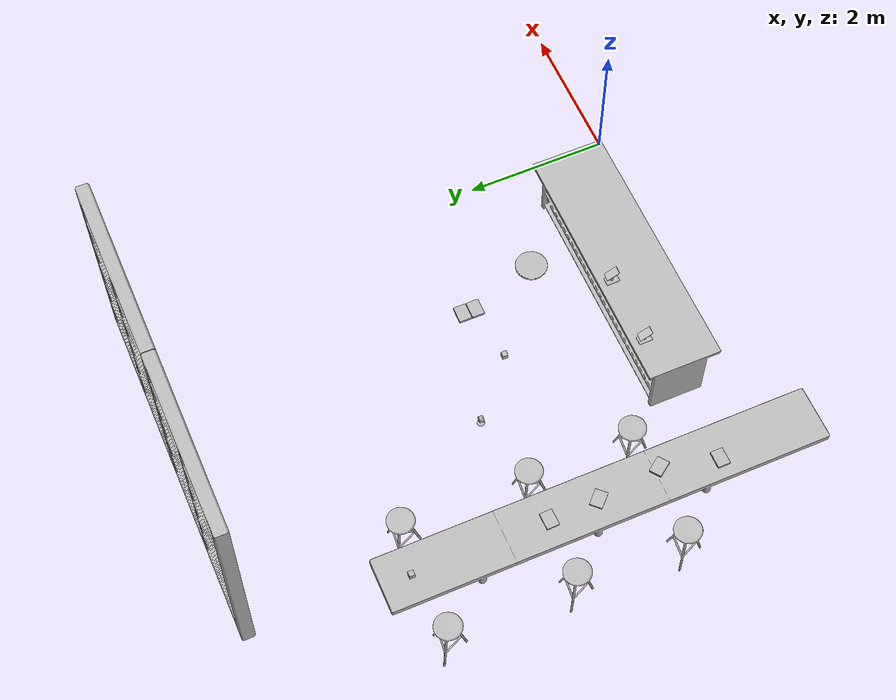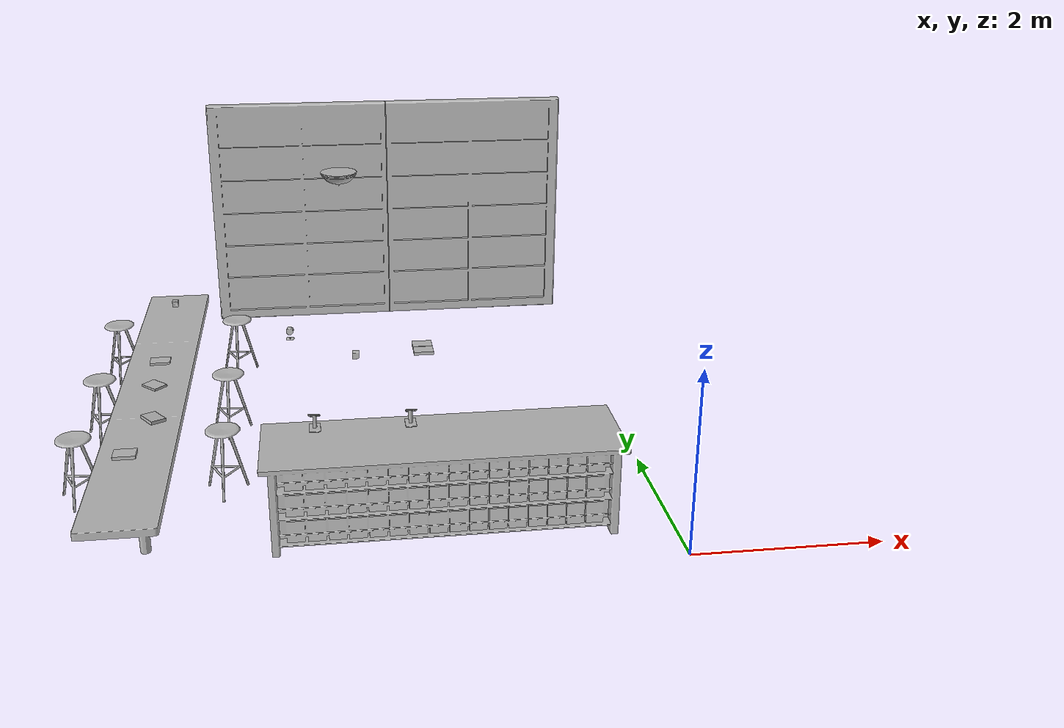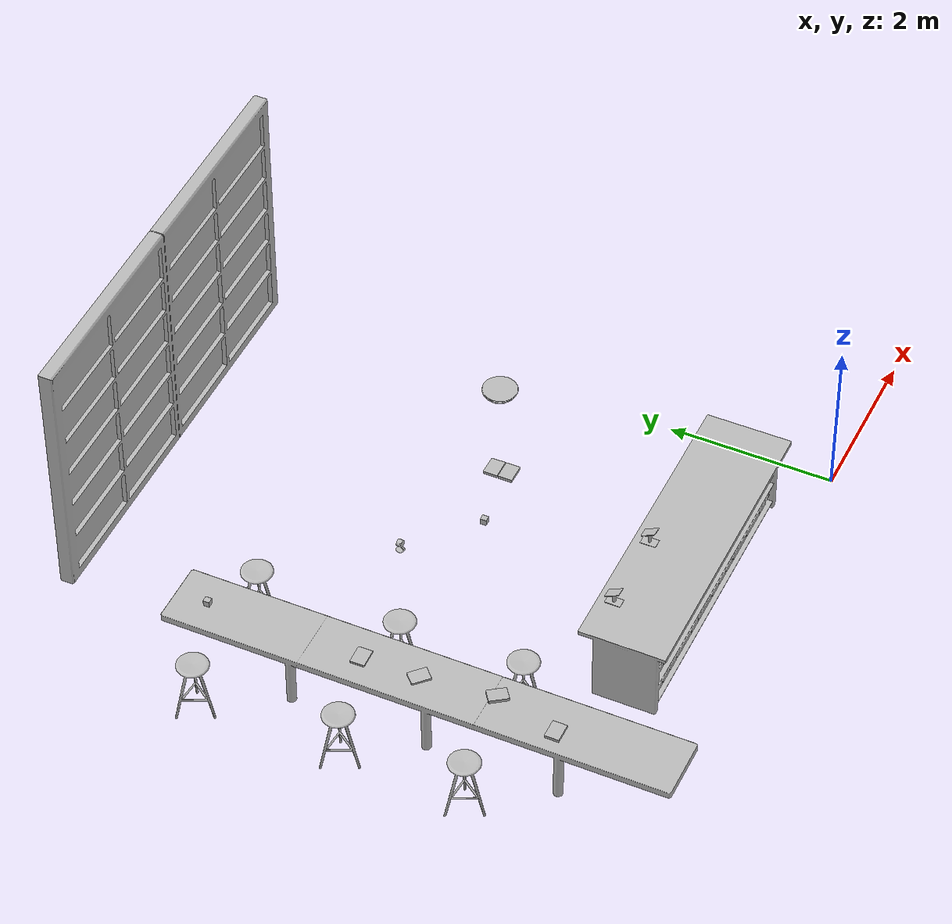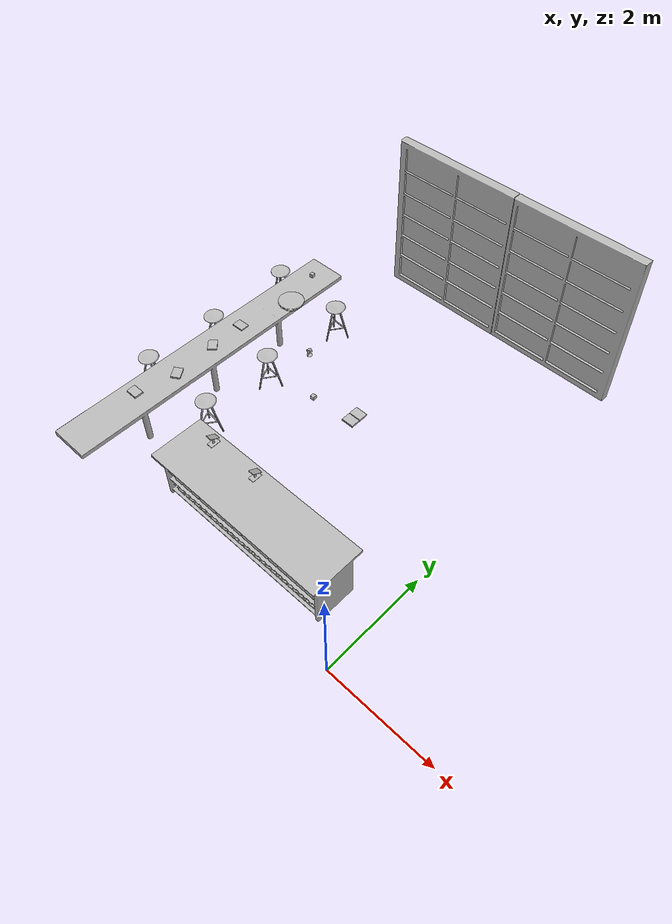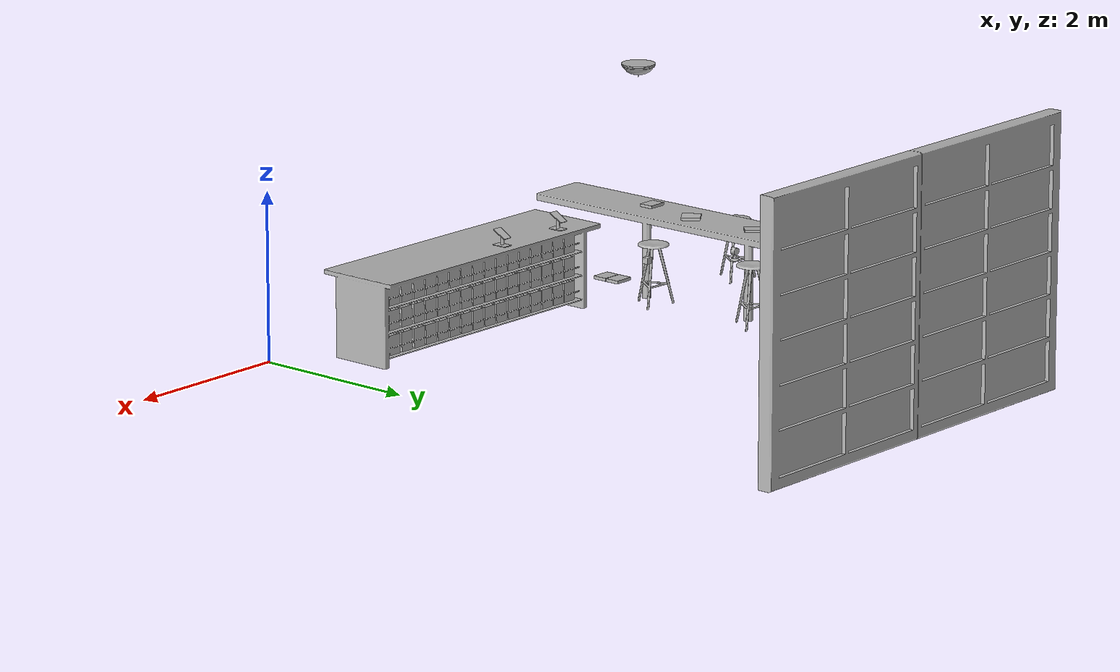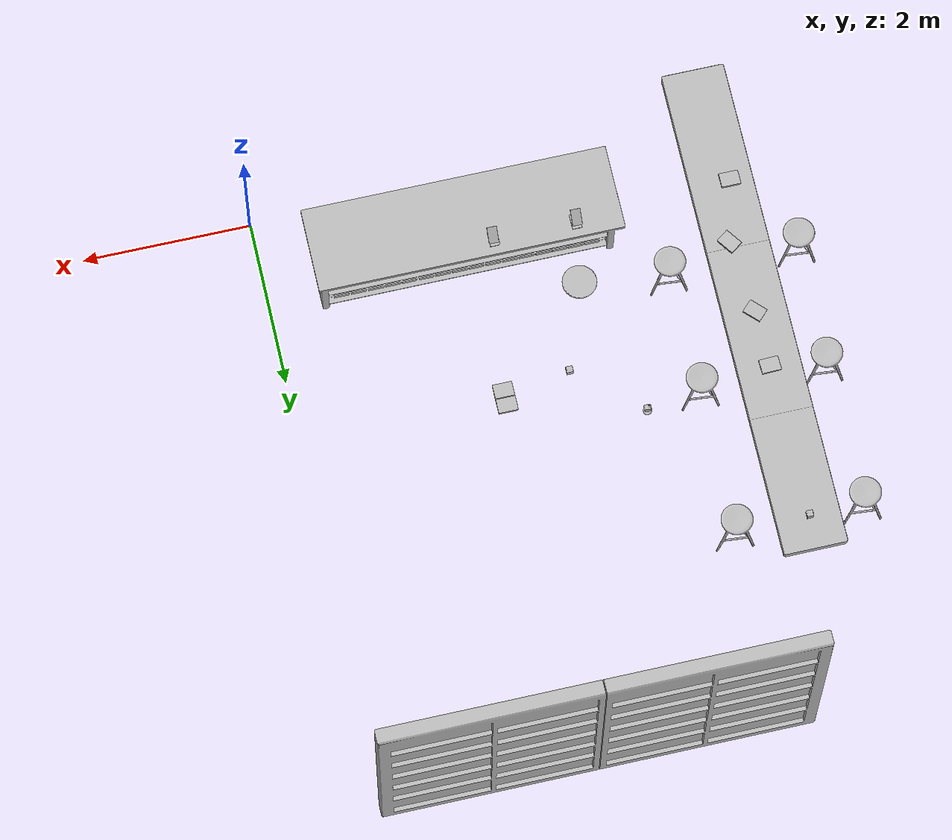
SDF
<sdf version="1.6">
 <world name="default">
  <model name="BookE_01_002">
   <link name="aws_robomaker_retail_BookE_01::link">
    <inertial>
     <mass>1</mass>
     <inertia><ixy>0</ixy><ixz>0</ixz><iyz>0</iyz><ixx>0.0666</ixx><iyy>0.0346</iyy><izz>0.0986</izz></inertia>
    </inertial>
    <collision name="collision">
     <geometry>
      <mesh>
       <uri>file://models/aws_robomaker_retail_BookE_01/meshes/aws_BookE_01_collision.DAE</uri>
       <scale>1 1 1</scale>
      </mesh>
     </geometry>
    </collision>
    <visual name="visual">
     <geometry>
      <mesh><uri>file://models/aws_robomaker_retail_BookE_01/meshes/aws_BookE_01_visual.DAE</uri></mesh>
     </geometry>
     <meta><layer>1</layer></meta>
    </visual>
   </link>
   <static>1</static>
   <pose>-5.414 3.33067 0.934015 -1e-06 -1e-06 -1.54109</pose>
  </model>
  <model name="BookE_01_008">
   <link name="aws_robomaker_retail_BookE_01::link">
    <inertial>
     <mass>1</mass>
     <inertia><ixy>0</ixy><ixz>0</ixz><iyz>0</iyz><ixx>0.0666</ixx><iyy>0.0346</iyy><izz>0.0986</izz></inertia>
    </inertial>
    <collision name="collision">
     <geometry>
      <mesh>
       <uri>file://models/aws_robomaker_retail_BookE_01/meshes/aws_BookE_01_collision.DAE</uri>
       <scale>1 1 1</scale>
      </mesh>
     </geometry>
    </collision>
    <visual name="visual">
     <geometry>
      <mesh><uri>file://models/aws_robomaker_retail_BookE_01/meshes/aws_BookE_01_visual.DAE</uri></mesh>
     </geometry>
     <meta><layer>1</layer></meta>
    </visual>
   </link>
   <static>1</static>
   <pose>-5.31512 1.77195 0.955242 3.14124 -0.072268 -2.52691</pose>
  </model>
  <model name="BookE_01_010">
   <link name="aws_robomaker_retail_BookE_01::link">
    <inertial>
     <mass>1</mass>
     <inertia><ixy>0</ixy><ixz>0</ixz><iyz>0</iyz><ixx>0.0666</ixx><iyy>0.0346</iyy><izz>0.0986</izz></inertia>
    </inertial>
    <collision name="collision">
     <geometry>
      <mesh>
       <uri>file://models/aws_robomaker_retail_BookE_01/meshes/aws_BookE_01_collision.DAE</uri>
       <scale>1 1 1</scale>
      </mesh>
     </geometry>
    </collision>
    <visual name="visual">
     <geometry>
      <mesh><uri>file://models/aws_robomaker_retail_BookE_01/meshes/aws_BookE_01_visual.DAE</uri></mesh>
     </geometry>
     <meta><layer>1</layer></meta>
    </visual>
   </link>
   <static>1</static>
   <pose>-5.50342 1.01206 0.941463 0 0 -1.56844</pose>
  </model>
  <model name="BookE_01_013">
   <link name="aws_robomaker_retail_BookE_01::link">
    <inertial>
     <mass>1</mass>
     <inertia><ixy>0</ixy><ixz>0</ixz><iyz>0</iyz><ixx>0.0666</ixx><iyy>0.0346</iyy><izz>0.0986</izz></inertia>
    </inertial>
    <collision name="collision">
     <geometry>
      <mesh>
       <uri>file://models/aws_robomaker_retail_BookE_01/meshes/aws_BookE_01_collision.DAE</uri>
       <scale>1 1 1</scale>
      </mesh>
     </geometry>
    </collision>
    <visual name="visual">
     <geometry>
      <mesh><uri>file://models/aws_robomaker_retail_BookE_01/meshes/aws_BookE_01_visual.DAE</uri></mesh>
     </geometry>
     <meta><layer>1</layer></meta>
    </visual>
   </link>
   <static>1</static>
   <pose>-5.40391 2.65088 0.931119 0.021204 -1e-06 -2.35575</pose>
  </model>
  <model name="BookE_01_016">
   <link name="aws_robomaker_retail_BookE_01::link">
    <inertial>
     <mass>1</mass>
     <inertia><ixy>0</ixy><ixz>0</ixz><iyz>0</iyz><ixx>0.0666</ixx><iyy>0.0346</iyy><izz>0.0986</izz></inertia>
    </inertial>
    <collision name="collision">
     <geometry>
      <mesh>
       <uri>file://models/aws_robomaker_retail_BookE_01/meshes/aws_BookE_01_collision.DAE</uri>
       <scale>1 1 1</scale>
      </mesh>
     </geometry>
    </collision>
    <visual name="visual">
     <geometry>
      <mesh><uri>file://models/aws_robomaker_retail_BookE_01/meshes/aws_BookE_01_visual.DAE</uri></mesh>
     </geometry>
     <meta><layer>1</layer></meta>
    </visual>
   </link>
   <static>1</static>
   <pose>-2.35737 2.99369 1.05494 0 -0 1.56816</pose>
  </model>
  <model name="BookE_01_019">
   <link name="aws_robomaker_retail_BookE_01::link">
    <inertial>
     <mass>1</mass>
     <inertia><ixy>0</ixy><ixz>0</ixz><iyz>0</iyz><ixx>0.0666</ixx><iyy>0.0346</iyy><izz>0.0986</izz></inertia>
    </inertial>
    <collision name="collision">
     <geometry>
      <mesh>
       <uri>file://models/aws_robomaker_retail_BookE_01/meshes/aws_BookE_01_collision.DAE</uri>
       <scale>1 1 1</scale>
      </mesh>
     </geometry>
    </collision>
    <visual name="visual">
     <geometry>
      <mesh><uri>file://models/aws_robomaker_retail_BookE_01/meshes/aws_BookE_01_visual.DAE</uri></mesh>
     </geometry>
     <meta><layer>1</layer></meta>
    </visual>
   </link>
   <static>1</static>
   <pose>-2.35737 3.17292 1.05494 0 -0 1.56816</pose>
  </model>
  <model name="ChairB_01_009">
   <link name="aws_robomaker_retail_ChairB_01::link">
    <inertial>
     <mass>3</mass>
     <inertia>
      <ixx>0.188185</ixx>
      <ixy>0</ixy>
      <ixz>0</ixz>
      <iyy>0.190617</iyy>
      <iyz>0</iyz>
      <izz>0.100999</izz>
     </inertia>
    </inertial>
    <collision name="collision">
     <geometry>
      <mesh>
       <uri>file://models/aws_robomaker_retail_ChairB_01/meshes/aws_ChairB_01_collision.DAE</uri>
       <scale>1 1 1</scale>
      </mesh>
     </geometry>
    </collision>
    <visual name="visual">
     <geometry>
      <mesh><uri>file://models/aws_robomaker_retail_ChairB_01/meshes/aws_ChairB_01_visual.DAE</uri></mesh>
     </geometry>
     <meta><layer>1</layer></meta>
    </visual>
   </link>
   <static>1</static>
   <pose>-4.60295 5.02192 0.030259 -0.001073 -0.001935 0.001439</pose>
  </model>
  <model name="ChairB_01_010">
   <link name="aws_robomaker_retail_ChairB_01::link">
    <inertial>
     <mass>3</mass>
     <inertia>
      <ixx>0.188185</ixx>
      <ixy>0</ixy>
      <ixz>0</ixz>
      <iyy>0.190617</iyy>
      <iyz>0</iyz>
      <izz>0.100999</izz>
     </inertia>
    </inertial>
    <collision name="collision">
     <geometry>
      <mesh>
       <uri>file://models/aws_robomaker_retail_ChairB_01/meshes/aws_ChairB_01_collision.DAE</uri>
       <scale>1 1 1</scale>
      </mesh>
     </geometry>
    </collision>
    <visual name="visual">
     <geometry>
      <mesh><uri>file://models/aws_robomaker_retail_ChairB_01/meshes/aws_ChairB_01_visual.DAE</uri></mesh>
     </geometry>
     <meta><layer>1</layer></meta>
    </visual>
   </link>
   <static>1</static>
   <pose>-6.10969 5.02625 0.027274 -0.001422 -0.002424 0.000176</pose>
  </model>
  <model name="ChairB_01_011">
   <link name="aws_robomaker_retail_ChairB_01::link">
    <inertial>
     <mass>3</mass>
     <inertia>
      <ixx>0.188185</ixx>
      <ixy>0</ixy>
      <ixz>0</ixz>
      <iyy>0.190617</iyy>
      <iyz>0</iyz>
      <izz>0.100999</izz>
     </inertia>
    </inertial>
    <collision name="collision">
     <geometry>
      <mesh>
       <uri>file://models/aws_robomaker_retail_ChairB_01/meshes/aws_ChairB_01_collision.DAE</uri>
       <scale>1 1 1</scale>
      </mesh>
     </geometry>
    </collision>
    <visual name="visual">
     <geometry>
      <mesh><uri>file://models/aws_robomaker_retail_ChairB_01/meshes/aws_ChairB_01_visual.DAE</uri></mesh>
     </geometry>
     <meta><layer>1</layer></meta>
    </visual>
   </link>
   <static>1</static>
   <pose>-4.61617 3.27675 0.0321 -0.001068 -0.001938 0.000117</pose>
  </model>
  <model name="ChairB_01_012">
   <link name="aws_robomaker_retail_ChairB_01::link">
    <inertial>
     <mass>3</mass>
     <inertia>
      <ixx>0.188185</ixx>
      <ixy>0</ixy>
      <ixz>0</ixz>
      <iyy>0.190617</iyy>
      <iyz>0</iyz>
      <izz>0.100999</izz>
     </inertia>
    </inertial>
    <collision name="collision">
     <geometry>
      <mesh>
       <uri>file://models/aws_robomaker_retail_ChairB_01/meshes/aws_ChairB_01_collision.DAE</uri>
       <scale>1 1 1</scale>
      </mesh>
     </geometry>
    </collision>
    <visual name="visual">
     <geometry>
      <mesh><uri>file://models/aws_robomaker_retail_ChairB_01/meshes/aws_ChairB_01_visual.DAE</uri></mesh>
     </geometry>
     <meta><layer>1</layer></meta>
    </visual>
   </link>
   <static>1</static>
   <pose>-6.09076 3.29341 0.029216 -0.001072 -0.001936 0.000119</pose>
  </model>
  <model name="ChairB_01_013">
   <link name="aws_robomaker_retail_ChairB_01::link">
    <inertial>
     <mass>3</mass>
     <inertia>
      <ixx>0.188185</ixx>
      <ixy>0</ixy>
      <ixz>0</ixz>
      <iyy>0.190617</iyy>
      <iyz>0</iyz>
      <izz>0.100999</izz>
     </inertia>
    </inertial>
    <collision name="collision">
     <geometry>
      <mesh>
       <uri>file://models/aws_robomaker_retail_ChairB_01/meshes/aws_ChairB_01_collision.DAE</uri>
       <scale>1 1 1</scale>
      </mesh>
     </geometry>
    </collision>
    <visual name="visual">
     <geometry>
      <mesh><uri>file://models/aws_robomaker_retail_ChairB_01/meshes/aws_ChairB_01_visual.DAE</uri></mesh>
     </geometry>
     <meta><layer>1</layer></meta>
    </visual>
   </link>
   <static>1</static>
   <pose>-4.5896 1.81577 0.032459 0.001362 -0.001944 0.000145</pose>
  </model>
  <model name="ChairB_01_014">
   <link name="aws_robomaker_retail_ChairB_01::link">
    <inertial>
     <mass>3</mass>
     <inertia>
      <ixx>0.188185</ixx>
      <ixy>0</ixy>
      <ixz>0</ixz>
      <iyy>0.190617</iyy>
      <iyz>0</iyz>
      <izz>0.100999</izz>
     </inertia>
    </inertial>
    <collision name="collision">
     <geometry>
      <mesh>
       <uri>file://models/aws_robomaker_retail_ChairB_01/meshes/aws_ChairB_01_collision.DAE</uri>
       <scale>1 1 1</scale>
      </mesh>
     </geometry>
    </collision>
    <visual name="visual">
     <geometry>
      <mesh><uri>file://models/aws_robomaker_retail_ChairB_01/meshes/aws_ChairB_01_visual.DAE</uri></mesh>
     </geometry>
     <meta><layer>1</layer></meta>
    </visual>
   </link>
   <static>1</static>
   <pose>-6.1301 1.7986 0.02944 0.001362 -0.001946 0.000105</pose>
  </model>
  <model name="SecurityCamera_01_002">
   <link name="aws_robomaker_retail_SecurityCamera_01::link">
    <inertial>
     <mass>1</mass>
     <inertia>
      <ixx>18.2222</ixx>
      <ixy>0</ixy>
      <ixz>0</ixz>
      <iyy>18.2222</iyy>
      <iyz>0</iyz>
      <izz>0.0018767</izz>
     </inertia>
    </inertial>
    <collision name="collision">
     <geometry>
      <mesh>
       <uri>file://models/aws_robomaker_retail_SecurityCamera_01/meshes/aws_SecurityCamera_01_collision.DAE</uri>
       <scale>1 1 1</scale>
      </mesh>
     </geometry>
    </collision>
    <visual name="visual">
     <geometry>
      <mesh>
       <uri>file://models/aws_robomaker_retail_SecurityCamera_01/meshes/aws_SecurityCamera_01_visual.DAE</uri>
      </mesh>
     </geometry>
     <meta><layer>2</layer></meta>
    </visual>
   </link>
   <static>1</static>
   <pose>-3.90451 3.59053 1.03776 0 -0 3.05091</pose>
  </model>
  <model name="DeskB_01_002">
   <link name="aws_robomaker_retail_DeskB_01::link">
    <inertial>
     <mass>50</mass>
     <inertia><ixx>154.884</ixx><ixy>0</ixy><ixz>0</ixz><iyy>7.48424</iyy><iyz>0</iyz><izz>152.099</izz></inertia>
    </inertial>
    <collision name="collision">
     <geometry>
      <mesh>
       <uri>file://models/aws_robomaker_retail_DeskB_01/meshes/aws_DeskB_01_collision.DAE</uri>
       <scale>1 1 1</scale>
      </mesh>
     </geometry>
    </collision>
    <visual name="visual">
     <geometry>
      <mesh><uri>file://models/aws_robomaker_retail_DeskB_01/meshes/aws_DeskB_01_visual.DAE</uri></mesh>
     </geometry>
     <meta><layer>1</layer></meta>
    </visual>
   </link>
   <static>1</static>
   <pose>-5.40071 2.58054 -0.181282 0 -0 0</pose>
  </model>
  <model name="DeskA_01_002">
   <link name="aws_robomaker_retail_DeskA_01::link">
    <inertial>
     <mass>20</mass>
     <inertia><ixx>3.49717</ixx><ixy>0</ixy><ixz>0</ixz><iyy>23.5599</iyy><iyz>0</iyz><izz>23.5702</izz></inertia>
    </inertial>
    <collision name="collision">
     <geometry>
      <mesh>
       <uri>file://models/aws_robomaker_retail_DeskA_01/meshes/aws_DeskA_01_collision.DAE</uri>
       <scale>1 1 1</scale>
      </mesh>
     </geometry>
    </collision>
    <visual name="visual">
     <geometry>
      <mesh><uri>file://models/aws_robomaker_retail_DeskA_01/meshes/aws_DeskA_01_visual.DAE</uri></mesh>
     </geometry>
     <meta><layer>1</layer></meta>
    </visual>
   </link>
   <static>1</static>
   <pose>-2.36994 0.836099 0.00876 -0.000772 -0.001938 1.7e-05</pose>
  </model>
  <model name="DoorB_01_001">
   <link name="aws_robomaker_retail_DoorB_01::link">
    <inertial>
     <mass>50</mass>
     <inertia><ixx>44.5597</ixx><ixy>0</ixy><ixz>0</ixz><iyy>151.699</iyy><iyz>0</iyz><izz>107.806</izz></inertia>
    </inertial>
    <collision name="collision">
     <geometry>
      <mesh>
       <uri>file://models/aws_robomaker_retail_DoorB_01/meshes/aws_DoorB_01_collision.DAE</uri>
       <scale>1 1 1</scale>
      </mesh>
     </geometry>
    </collision>
    <visual name="visual">
     <geometry>
      <mesh><uri>file://models/aws_robomaker_retail_DoorB_01/meshes/aws_DoorB_01_visual.DAE</uri></mesh>
     </geometry>
     <meta><layer>2</layer></meta>
    </visual>
   </link>
   <static>1</static>
   <pose>-2.49246 7.21937 -0.035203 0 -0 0</pose>
  </model>
  <model name="Tablet_01_007">
   <link name="aws_robomaker_retail_Tablet_01::link">
    <inertial>
     <mass>0.5</mass>
     <inertia><ixx>0.035652</ixx><ixy>0</ixy><ixz>0</ixz><iyy>0.01</iyy><iyz>0</iyz><izz>0.041207</izz></inertia>
    </inertial>
    <collision name="collision">
     <geometry>
      <mesh>
       <uri>file://models/aws_robomaker_retail_Tablet_01/meshes/aws_Tablet_01_collision.DAE</uri>
       <scale>1 1 1</scale>
      </mesh>
     </geometry>
    </collision>
    <visual name="visual">
     <geometry>
      <mesh><uri>file://models/aws_robomaker_retail_Tablet_01/meshes/aws_Tablet_01_visual.DAE</uri></mesh>
     </geometry>
     <meta><layer>2</layer></meta>
    </visual>
   </link>
   <static>1</static>
   <pose>-2.64967 1.16382 1.17789 0.513308 -1e-06 3.11006</pose>
  </model>
  <model name="Tablet_01_008">
   <link name="aws_robomaker_retail_Tablet_01::link">
    <inertial>
     <mass>0.5</mass>
     <inertia><ixx>0.035652</ixx><ixy>0</ixy><ixz>0</ixz><iyy>0.01</iyy><iyz>0</iyz><izz>0.041207</izz></inertia>
    </inertial>
    <collision name="collision">
     <geometry>
      <mesh>
       <uri>file://models/aws_robomaker_retail_Tablet_01/meshes/aws_Tablet_01_collision.DAE</uri>
       <scale>1 1 1</scale>
      </mesh>
     </geometry>
    </collision>
    <visual name="visual">
     <geometry>
      <mesh><uri>file://models/aws_robomaker_retail_Tablet_01/meshes/aws_Tablet_01_visual.DAE</uri></mesh>
     </geometry>
     <meta><layer>2</layer></meta>
    </visual>
   </link>
   <static>1</static>
   <pose>-3.63655 1.16382 1.17789 0.513308 -1e-06 3.11006</pose>
  </model>
  <model name="Holder_01_011">
   <link name="aws_robomaker_retail_Holder_01::link">
    <inertial><mass>1</mass></inertial>
    <collision name="collision">
     <geometry>
      <mesh>
       <uri>file://models/aws_robomaker_retail_Holder_01/meshes/aws_Holder_01_collision.DAE</uri>
       <scale>1 1 1</scale>
      </mesh>
     </geometry>
    </collision>
    <visual name="visual">
     <geometry>
      <mesh><uri>file://models/aws_robomaker_retail_Holder_01/meshes/aws_Holder_01_visual.DAE</uri></mesh>
     </geometry>
     <meta><layer>2</layer></meta>
    </visual>
   </link>
   <static>1</static>
   <pose>-2.65916 1.16083 1.03776 0 0 -3.13015</pose>
  </model>
  <model name="Holder_01_012">
   <link name="aws_robomaker_retail_Holder_01::link">
    <inertial><mass>1</mass></inertial>
    <collision name="collision">
     <geometry>
      <mesh>
       <uri>file://models/aws_robomaker_retail_Holder_01/meshes/aws_Holder_01_collision.DAE</uri>
       <scale>1 1 1</scale>
      </mesh>
     </geometry>
    </collision>
    <visual name="visual">
     <geometry>
      <mesh><uri>file://models/aws_robomaker_retail_Holder_01/meshes/aws_Holder_01_visual.DAE</uri></mesh>
     </geometry>
     <meta><layer>2</layer></meta>
    </visual>
   </link>
   <static>1</static>
   <pose>-3.6313 1.16083 1.03776 0 0 -3.13015</pose>
  </model>
  <model name="LightA_01_005">
   <link name="aws_robomaker_retail_LightA_01::link">
    <inertial><mass>1</mass></inertial>
    <collision name="collision">
     <geometry>
      <mesh>
       <uri>file://models/aws_robomaker_retail_LightA_01/meshes/aws_LightA_01_collision.DAE</uri>
       <scale>1 1 1</scale>
      </mesh>
     </geometry>
    </collision>
    <visual name="visual">
     <geometry>
      <mesh><uri>file://models/aws_robomaker_retail_LightA_01/meshes/aws_LightA_01_visual.DAE</uri></mesh>
     </geometry>
     <meta><layer>3</layer></meta>
    </visual>
   </link>
   <static>1</static>
   <pose>-3.271 2.68593 3.15033 0 -0 0</pose>
  </model>
  <model name="MagicCube_01_002">
   <link name="aws_robomaker_retail_MagicCube_01::link">
    <inertial>
     <mass>0.2</mass>
     <inertia><ixx>0.01</ixx><ixy>0</ixy><ixz>0</ixz><iyy>0.01</iyy><iyz>0</iyz><izz>0.01</izz></inertia>
    </inertial>
    <collision name="collision">
     <geometry>
      <mesh>
       <uri>file://models/aws_robomaker_retail_MagicCube_01/meshes/aws_MagicCube_01_collision.DAE</uri>
       <scale>1 1 1</scale>
      </mesh>
     </geometry>
    </collision>
    <visual name="visual">
     <geometry>
      <mesh><uri>file://models/aws_robomaker_retail_MagicCube_01/meshes/aws_MagicCube_01_visual.DAE</uri></mesh>
     </geometry>
     <meta><layer>1</layer></meta>
    </visual>
   </link>
   <static>1</static>
   <pose>-5.38367 5.17752 0.968608 1.56413 -1e-06 -1.55541</pose>
  </model>
  <model name="MagicCube_01_003">
   <link name="aws_robomaker_retail_MagicCube_01::link">
    <inertial>
     <mass>0.2</mass>
     <inertia><ixx>0.01</ixx><ixy>0</ixy><ixz>0</ixz><iyy>0.01</iyy><iyz>0</iyz><izz>0.01</izz></inertia>
    </inertial>
    <collision name="collision">
     <geometry>
      <mesh>
       <uri>file://models/aws_robomaker_retail_MagicCube_01/meshes/aws_MagicCube_01_collision.DAE</uri>
       <scale>1 1 1</scale>
      </mesh>
     </geometry>
    </collision>
    <visual name="visual">
     <geometry>
      <mesh><uri>file://models/aws_robomaker_retail_MagicCube_01/meshes/aws_MagicCube_01_visual.DAE</uri></mesh>
     </geometry>
     <meta><layer>1</layer></meta>
    </visual>
   </link>
   <static>1</static>
   <pose>-3.14651 2.92846 1.03565 0 -0 0</pose>
  </model>
 </world>
</sdf>
